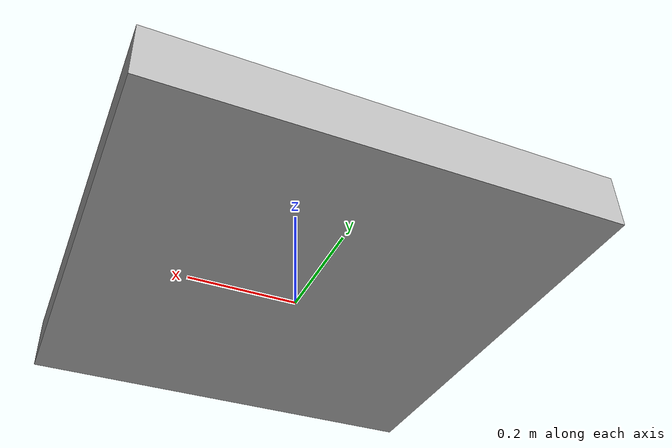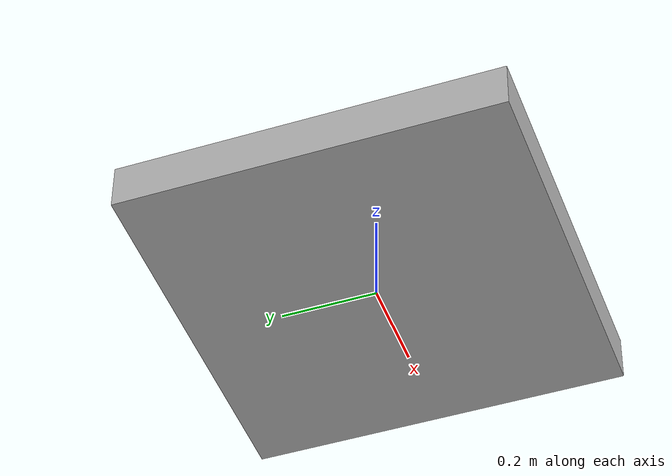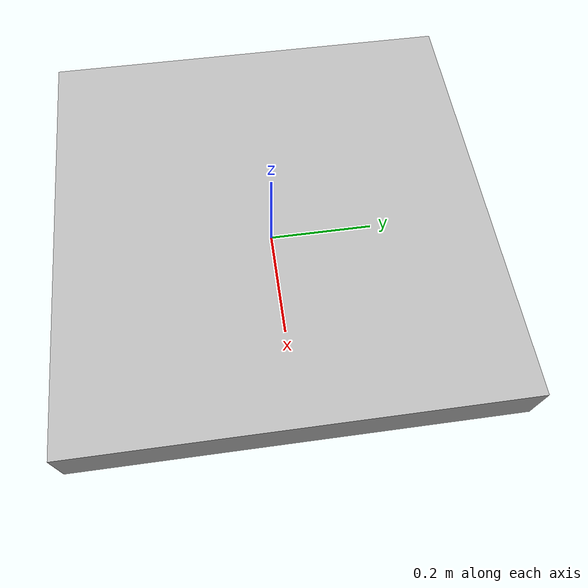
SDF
<?xml version="1.0" ?>
<sdf version="1.6">
  <model name="aruco">
    <static>true</static>
    <link name="link">
      <collision name="collision">
        <geometry>
          <mesh>
            <scale>1 1 1</scale>
            <uri>//aruco/meshes/aruco.dae</uri>
          </mesh>
           <surface>
            <friction>
              <ode>
                <mu>1.2</mu>
                <mu2>1.2</mu2>
              </ode>
            </friction>
          </surface>
        </geometry>
      </collision>
      <visual name="visual">
        <geometry>
          <mesh>
            <scale>0.8 0.8 1</scale>
            <uri>model://aruco/meshes/aruco.dae</uri>
          </mesh>
        </geometry>
      </visual>
    </link>
  </model>
</sdf>
